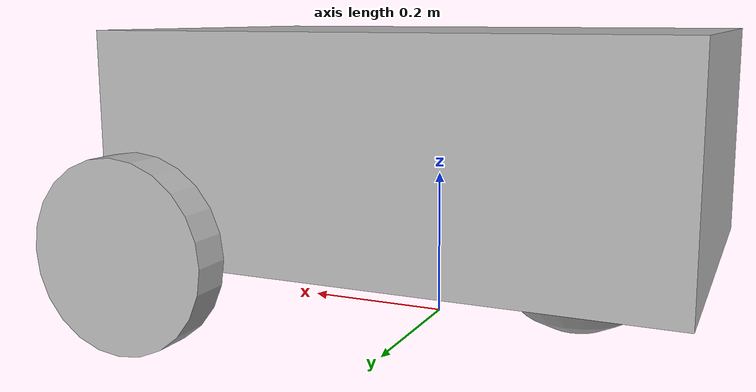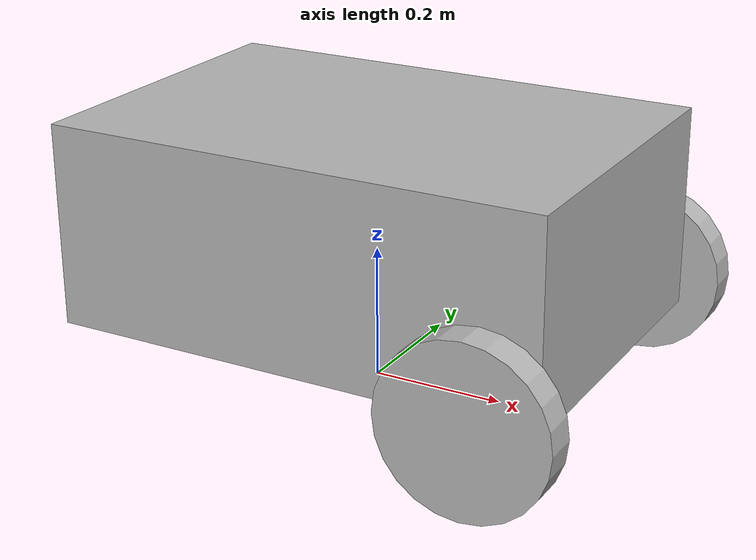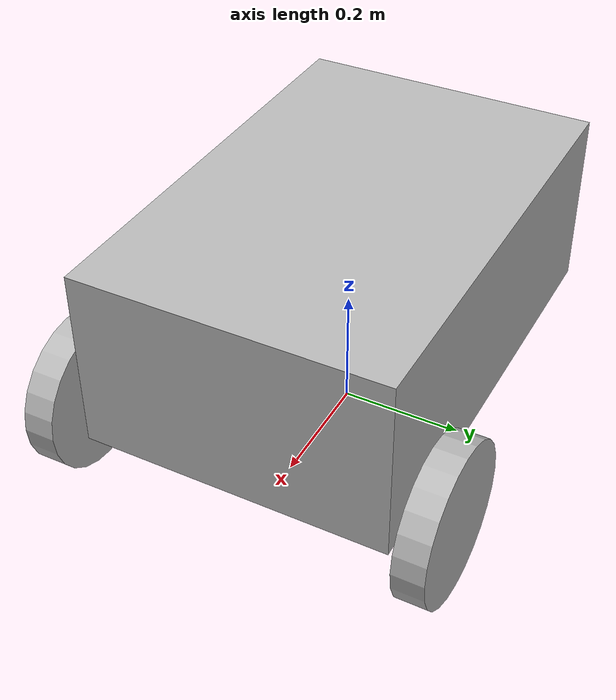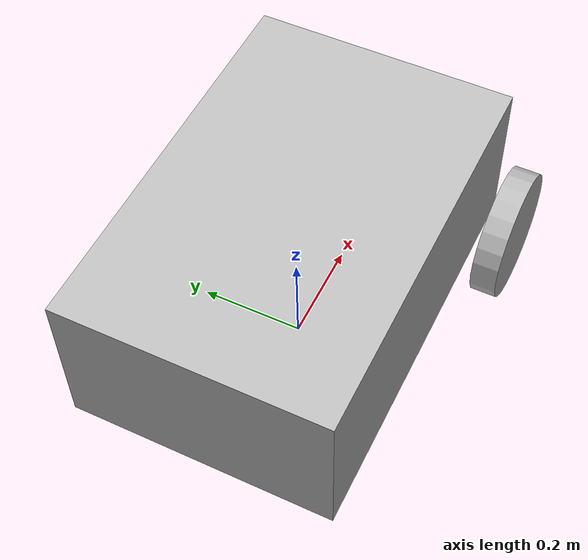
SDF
<?xml version='1.0'?>
<sdf version='1.6'>
  <model name='project1_robot'>
    <link name='chassis'>
      <pose frame=''>0 0 0.25 0 -0 0</pose>
      <inertial>
        <mass>20</mass>
        <pose frame=''>-0.1 0 -0.1 0 -0 0</pose>
        <inertia>
          <ixx>0.5</ixx>
          <iyy>1</iyy>
          <izz>0.1</izz>
          <ixy>0</ixy>
          <ixz>0</ixz>
          <iyz>0</iyz>
        </inertia>
      </inertial>
      <self_collide>0</self_collide>
      <kinematic>0</kinematic>
      <gravity>1</gravity>
      <visual name='caster_visual'>
        <pose frame=''>-0.2 0 -0.125 0 -0 0</pose>
        <geometry>
          <sphere>
            <radius>0.125</radius>
          </sphere>
        </geometry>
        <material>
          <shader type='pixel'>
            <normal_map>__default__</normal_map>
          </shader>
        </material>
        <cast_shadows>1</cast_shadows>
        <transparency>0</transparency>
      </visual>
      <visual name='visual'>
        <geometry>
          <box>
            <size>0.75 0.5 0.3</size>
          </box>
        </geometry>
        <material>
          <shader type='pixel'>
            <normal_map>__default__</normal_map>
          </shader>
        </material>
        <pose frame=''>0 0 0 0 -0 0</pose>
        <cast_shadows>1</cast_shadows>
        <transparency>0</transparency>
      </visual>
      <collision name='collision'>
        <laser_retro>0</laser_retro>
        <max_contacts>10</max_contacts>
        <pose frame=''>0 0 0 0 -0 0</pose>
        <geometry>
          <box>
            <size>0.75 0.5 0.3</size>
          </box>
        </geometry>
        <surface>
          <friction>
            <ode>
              <mu>1</mu>
              <mu2>1</mu2>
              <fdir1>0 0 0</fdir1>
              <slip1>0</slip1>
              <slip2>0</slip2>
            </ode>
            <torsional>
              <coefficient>1</coefficient>
              <patch_radius>0</patch_radius>
              <surface_radius>0</surface_radius>
              <use_patch_radius>1</use_patch_radius>
              <ode>
                <slip>0</slip>
              </ode>
            </torsional>
          </friction>
          <bounce>
            <restitution_coefficient>0</restitution_coefficient>
            <threshold>1e+06</threshold>
          </bounce>
          <contact>
            <collide_without_contact>0</collide_without_contact>
            <collide_without_contact_bitmask>1</collide_without_contact_bitmask>
            <collide_bitmask>1</collide_bitmask>
            <ode>
              <soft_cfm>0</soft_cfm>
              <soft_erp>0.2</soft_erp>
              <kp>1e+13</kp>
              <kd>1</kd>
              <max_vel>0.01</max_vel>
              <min_depth>0</min_depth>
            </ode>
            <bullet>
              <split_impulse>1</split_impulse>
              <split_impulse_penetration_threshold>-0.01</split_impulse_penetration_threshold>
              <soft_cfm>0</soft_cfm>
              <soft_erp>0.2</soft_erp>
              <kp>1e+13</kp>
              <kd>1</kd>
            </bullet>
          </contact>
        </surface>
      </collision>
      <collision name='caster_collision'>
        <laser_retro>0</laser_retro>
        <max_contacts>10</max_contacts>
        <pose frame=''>-0.2 0 -0.125 0 -0 0</pose>
        <geometry>
          <sphere>
            <radius>0.125</radius>
          </sphere>
        </geometry>
        <surface>
          <friction>
            <ode>
              <mu>0</mu>
              <mu2>0</mu2>
              <fdir1>0 0 0</fdir1>
              <slip1>0</slip1>
              <slip2>0</slip2>
            </ode>
            <torsional>
              <coefficient>1</coefficient>
              <patch_radius>0</patch_radius>
              <surface_radius>0</surface_radius>
              <use_patch_radius>1</use_patch_radius>
              <ode>
                <slip>0</slip>
              </ode>
            </torsional>
          </friction>
          <bounce>
            <restitution_coefficient>0</restitution_coefficient>
            <threshold>1e+06</threshold>
          </bounce>
          <contact>
            <collide_without_contact>0</collide_without_contact>
            <collide_without_contact_bitmask>1</collide_without_contact_bitmask>
            <collide_bitmask>1</collide_bitmask>
            <ode>
              <soft_cfm>0</soft_cfm>
              <soft_erp>0.2</soft_erp>
              <kp>1e+13</kp>
              <kd>1</kd>
              <max_vel>0.01</max_vel>
              <min_depth>0</min_depth>
            </ode>
            <bullet>
              <split_impulse>1</split_impulse>
              <split_impulse_penetration_threshold>-0.01</split_impulse_penetration_threshold>
              <soft_cfm>0</soft_cfm>
              <soft_erp>0.2</soft_erp>
              <kp>1e+13</kp>
              <kd>1</kd>
            </bullet>
          </contact>
        </surface>
      </collision>
    </link>
    <link name='left_wheel'>
      <pose frame=''>0.3 0.3 0.125 -0.000572 1.5707 1.57013</pose>
      <inertial>
        <inertia>
          <ixx>1</ixx>
          <ixy>0</ixy>
          <ixz>0</ixz>
          <iyy>1</iyy>
          <iyz>0</iyz>
          <izz>1</izz>
        </inertia>
        <mass>1</mass>
        <pose frame=''>0 0 0 0 -0 0</pose>
      </inertial>
      <self_collide>0</self_collide>
      <kinematic>0</kinematic>
      <gravity>1</gravity>
      <visual name='visual'>
        <geometry>
          <cylinder>
            <radius>0.125</radius>
            <length>0.05</length>
          </cylinder>
        </geometry>
        <material>
          <shader type='pixel'>
            <normal_map>__default__</normal_map>
          </shader>
        </material>
        <pose frame=''>0 0 0 0 -0 0</pose>
        <cast_shadows>1</cast_shadows>
        <transparency>0</transparency>
      </visual>
      <collision name='collision'>
        <laser_retro>0</laser_retro>
        <max_contacts>10</max_contacts>
        <pose frame=''>0 0 0 0 -0 0</pose>
        <geometry>
          <cylinder>
            <radius>0.125</radius>
            <length>0.05</length>
          </cylinder>
        </geometry>
        <surface>
          <friction>
            <ode>
              <mu>1</mu>
              <mu2>1</mu2>
              <fdir1>0 0 0</fdir1>
              <slip1>0</slip1>
              <slip2>0</slip2>
            </ode>
            <torsional>
              <coefficient>1</coefficient>
              <patch_radius>0</patch_radius>
              <surface_radius>0</surface_radius>
              <use_patch_radius>1</use_patch_radius>
              <ode>
                <slip>0</slip>
              </ode>
            </torsional>
          </friction>
          <bounce>
            <restitution_coefficient>0</restitution_coefficient>
            <threshold>1e+06</threshold>
          </bounce>
          <contact>
            <collide_without_contact>0</collide_without_contact>
            <collide_without_contact_bitmask>1</collide_without_contact_bitmask>
            <collide_bitmask>1</collide_bitmask>
            <ode>
              <soft_cfm>0</soft_cfm>
              <soft_erp>0.2</soft_erp>
              <kp>1e+13</kp>
              <kd>1</kd>
              <max_vel>0.01</max_vel>
              <min_depth>0</min_depth>
            </ode>
            <bullet>
              <split_impulse>1</split_impulse>
              <split_impulse_penetration_threshold>-0.01</split_impulse_penetration_threshold>
              <soft_cfm>0</soft_cfm>
              <soft_erp>0.2</soft_erp>
              <kp>1e+13</kp>
              <kd>1</kd>
            </bullet>
          </contact>
        </surface>
      </collision>
    </link>
    <link name='right_wheel'>
      <pose frame=''>0.3 -0.3 0.125 -0.000572 1.5707 1.57013</pose>
      <inertial>
        <inertia>
          <ixx>1</ixx>
          <ixy>0</ixy>
          <ixz>0</ixz>
          <iyy>1</iyy>
          <iyz>0</iyz>
          <izz>1</izz>
        </inertia>
        <mass>1</mass>
        <pose frame=''>0 0 0 0 -0 0</pose>
      </inertial>
      <self_collide>0</self_collide>
      <kinematic>0</kinematic>
      <gravity>1</gravity>
      <visual name='visual'>
        <geometry>
          <cylinder>
            <radius>0.125</radius>
            <length>0.05</length>
          </cylinder>
        </geometry>
        <material>
          <shader type='pixel'>
            <normal_map>__default__</normal_map>
          </shader>
        </material>
        <pose frame=''>0 0 0 0 -0 0</pose>
        <cast_shadows>1</cast_shadows>
        <transparency>0</transparency>
      </visual>
      <collision name='collision'>
        <laser_retro>0</laser_retro>
        <max_contacts>10</max_contacts>
        <pose frame=''>0 0 0 0 -0 0</pose>
        <geometry>
          <cylinder>
            <radius>0.125</radius>
            <length>0.05</length>
          </cylinder>
        </geometry>
        <surface>
          <friction>
            <ode>
              <mu>1</mu>
              <mu2>1</mu2>
              <fdir1>0 0 0</fdir1>
              <slip1>0</slip1>
              <slip2>0</slip2>
            </ode>
            <torsional>
              <coefficient>1</coefficient>
              <patch_radius>0</patch_radius>
              <surface_radius>0</surface_radius>
              <use_patch_radius>1</use_patch_radius>
              <ode>
                <slip>0</slip>
              </ode>
            </torsional>
          </friction>
          <bounce>
            <restitution_coefficient>0</restitution_coefficient>
            <threshold>1e+06</threshold>
          </bounce>
          <contact>
            <collide_without_contact>0</collide_without_contact>
            <collide_without_contact_bitmask>1</collide_without_contact_bitmask>
            <collide_bitmask>1</collide_bitmask>
            <ode>
              <soft_cfm>0</soft_cfm>
              <soft_erp>0.2</soft_erp>
              <kp>1e+13</kp>
              <kd>1</kd>
              <max_vel>0.01</max_vel>
              <min_depth>0</min_depth>
            </ode>
            <bullet>
              <split_impulse>1</split_impulse>
              <split_impulse_penetration_threshold>-0.01</split_impulse_penetration_threshold>
              <soft_cfm>0</soft_cfm>
              <soft_erp>0.2</soft_erp>
              <kp>1e+13</kp>
              <kd>1</kd>
            </bullet>
          </contact>
        </surface>
      </collision>
    </link>
    <joint name='left_wheel_hinge' type='revolute'>
      <parent>chassis</parent>
      <child>left_wheel</child>
      <pose frame=''>0 0 -0.03 0 -0 0</pose>
      <axis>
        <xyz>0 1 0</xyz>
        <use_parent_model_frame>1</use_parent_model_frame>
        <limit>
          <lower>-1e+16</lower>
          <upper>1e+16</upper>
          <effort>-1</effort>
          <velocity>-1</velocity>
        </limit>
        <dynamics>
          <spring_reference>0</spring_reference>
          <spring_stiffness>0</spring_stiffness>
          <damping>0</damping>
          <friction>0</friction>
        </dynamics>
      </axis>
      <physics>
        <ode>
          <limit>
            <cfm>0</cfm>
            <erp>0.2</erp>
          </limit>
          <suspension>
            <cfm>0</cfm>
            <erp>0.2</erp>
          </suspension>
        </ode>
      </physics>
    </joint>
    <joint name='right_wheel_hinge' type='revolute'>
      <parent>chassis</parent>
      <child>right_wheel</child>
      <pose frame=''>0 0 0.03 0 -0 0</pose>
      <axis>
        <xyz>0 1 0</xyz>
        <use_parent_model_frame>1</use_parent_model_frame>
        <limit>
          <lower>-1e+16</lower>
          <upper>1e+16</upper>
          <effort>-1</effort>
          <velocity>-1</velocity>
        </limit>
        <dynamics>
          <spring_reference>0</spring_reference>
          <spring_stiffness>0</spring_stiffness>
          <damping>0</damping>
          <friction>0</friction>
        </dynamics>
      </axis>
      <physics>
        <ode>
          <limit>
            <cfm>0</cfm>
            <erp>0.2</erp>
          </limit>
          <suspension>
            <cfm>0</cfm>
            <erp>0.2</erp>
          </suspension>
        </ode>
      </physics>
    </joint>
    <static>0</static>
    <allow_auto_disable>1</allow_auto_disable>
  </model>
</sdf>
